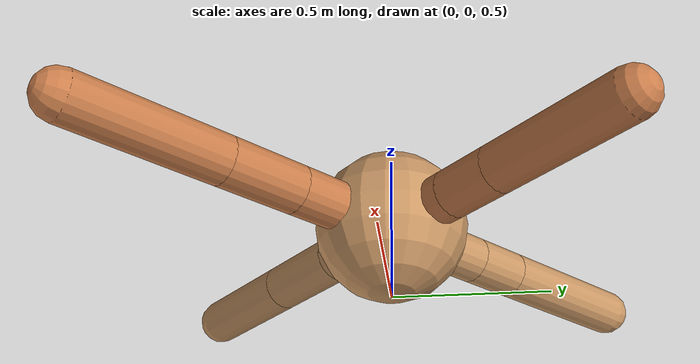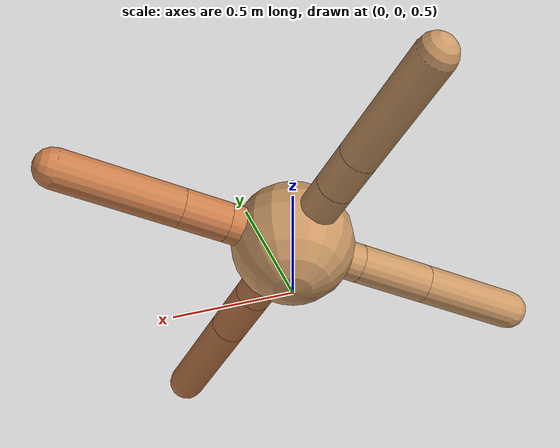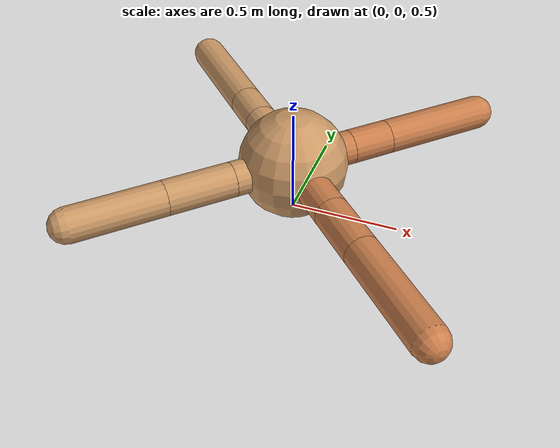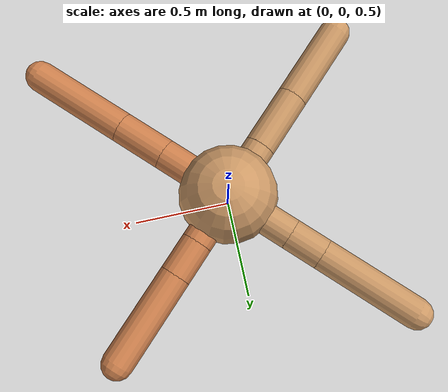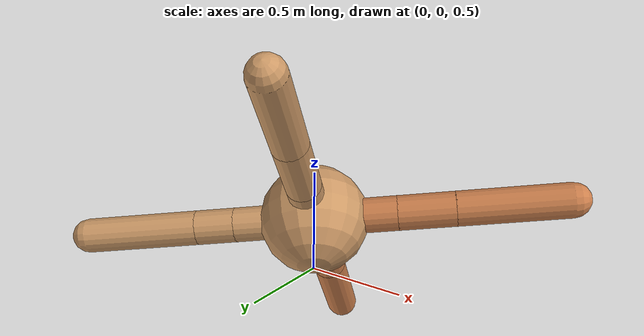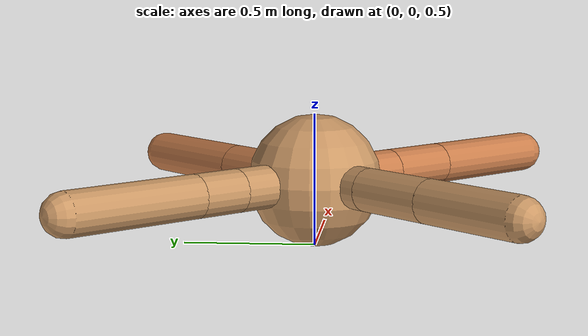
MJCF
<mujoco model="ant">
  <compiler angle="degree" coordinate="local" inertiafromgeom="true" />
  <option integrator="RK4" timestep="0.01" />
  <custom>
    <numeric data="0.0 0.0 0.55 1.0 0.0 0.0 0.0 0.0 1.0 0.0 -1.0 0.0 -1.0 0.0 1.0" name="init_qpos" />
  </custom>
  <default>
    <joint armature="1" damping="1" limited="true" />
    <geom conaffinity="0" condim="3" density="5.0" friction="1.5 0.1 0.1" margin="0.01" rgba="0.8 0.6 0.4 1" />
  </default>
  <worldbody>
    <body name="torso" pos="0 0 0.75">
      <geom name="torso_geom" pos="0 0 0" size="0.25" type="sphere" />

      <body name="front_left_leg" pos="0 0 0">
        <geom fromto="0.0 0.0 0.0 0.20354864803427541 0.20354864803427541 0.0" name="aux_1_geom" size="0.08" type="capsule" rgba=".8 .5 .3 1" />
        <body name="aux_1" pos="0.20354864803427541 0.20354864803427541 0.0">
          <joint axis="0 0 1" name="hip_1" pos="0.0 0.0 0.0" range="-40 40" type="hinge" />
          <geom fromto="0.0 0.0 0.0 0.136348420521176 0.136348420521176 0.0" name="left_leg_geom" size="0.08" type="capsule" rgba=".8 .5 .3 1" />
          <body pos="0.136348420521176 0.136348420521176 0.0" name="front_left_foot">
            <joint axis="-1 1 0" name="ankle_1" pos="0.0 0.0 0.0" range="30 100" type="hinge" />
            <geom fromto="0.0 0.0 0.0 0.35361732086996844 0.35361732086996844 0.0" name="left_ankle_geom" size="0.08" type="capsule" rgba=".8 .5 .3 1" />
          </body>
        </body>
      </body>
      <body name="front_right_leg" pos="0 0 0">
        <geom fromto="0.0 0.0 0.0 -0.2598247155058485 0.2598247155058485 0.0" name="aux_2_geom" size="0.08" type="capsule" />
        <body name="aux_2" pos="-0.2598247155058485 0.2598247155058485 0.0">
          <joint axis="0 0 1" name="hip_2" pos="0.0 0.0 0.0" range="-40 40" type="hinge" />
          <geom fromto="0.0 0.0 0.0 -0.12910672132828327 0.12910672132828327 0.0" name="right_leg_geom" size="0.08" type="capsule" />
          <body pos="-0.12910672132828327 0.12910672132828327 0.0" name="front_right_foot">
            <joint axis="1 1 0" name="ankle_2" pos="0.0 0.0 0.0" range="-100 -30" type="hinge" />
            <geom fromto="0.0 0.0 0.0 -0.37682851065306505 0.37682851065306505 0.0" name="right_ankle_geom" size="0.08" type="capsule" />
          </body>
        </body>
      </body>
      <body name="left_back_leg" pos="0 0 0">
        <geom fromto="0.0 0.0 0.0 -0.20897205990618506 -0.20897205990618506 0.0" name="aux_3_geom" size="0.08" type="capsule" />
        <body name="aux_3" pos="-0.20897205990618506 -0.20897205990618506 0.0">
          <joint axis="0 0 1" name="hip_3" pos="0.0 0.0 0.0" range="-40 40" type="hinge" />
          <geom fromto="0.0 0.0 0.0 -0.2196865023126986 -0.2196865023126986 0.0" name="back_leg_geom" size="0.08" type="capsule" />
          <body pos="-0.2196865023126986 -0.2196865023126986 0.0" name="left_back_foot">
            <joint axis="-1 1 0" name="ankle_3" pos="0.0 0.0 0.0" range="-100 -30" type="hinge" />
            <geom fromto="0.0 0.0 0.0 -0.30003330762761515 -0.30003330762761515 0.0" name="third_ankle_geom" size="0.08" type="capsule" />
          </body>
        </body>
      </body>
      <body name="right_back_leg" pos="0 0 0">
        <geom fromto="0.0 0.0 0.0 0.271473114142965 -0.271473114142965 0.0" name="aux_4_geom" size="0.08" type="capsule" rgba=".8 .5 .3 1" />
        <body name="aux_4" pos="0.271473114142965 -0.271473114142965 0.0">
          <joint axis="0 0 1" name="hip_4" pos="0.0 0.0 0.0" range="-40 40" type="hinge" />
          <geom fromto="0.0 0.0 0.0 0.1839803456581607 -0.1839803456581607 0.0" name="rightback_leg_geom" size="0.08" type="capsule" rgba=".8 .5 .3 1" />
          <body pos="0.1839803456581607 -0.1839803456581607 0.0" name="right_back_foot">
            <joint axis="1 1 0" name="ankle_4" pos="0.0 0.0 0.0" range="30 100" type="hinge" />
            <geom fromto="0.0 0.0 0.0 0.3596233704231988 -0.3596233704231988 0.0" name="fourth_ankle_geom" size="0.08" type="capsule" rgba=".8 .5 .3 1" />
          </body>
        </body>
      </body>
    </body>
  </worldbody>
  <actuator>
    <motor ctrllimited="true" ctrlrange="-1.0 1.0" joint="hip_4" gear="150" />
    <motor ctrllimited="true" ctrlrange="-1.0 1.0" joint="ankle_4" gear="150" />
    <motor ctrllimited="true" ctrlrange="-1.0 1.0" joint="hip_1" gear="150" />
    <motor ctrllimited="true" ctrlrange="-1.0 1.0" joint="ankle_1" gear="150" />
    <motor ctrllimited="true" ctrlrange="-1.0 1.0" joint="hip_2" gear="150" />
    <motor ctrllimited="true" ctrlrange="-1.0 1.0" joint="ankle_2" gear="150" />
    <motor ctrllimited="true" ctrlrange="-1.0 1.0" joint="hip_3" gear="150" />
    <motor ctrllimited="true" ctrlrange="-1.0 1.0" joint="ankle_3" gear="150" />
  </actuator>
</mujoco>
